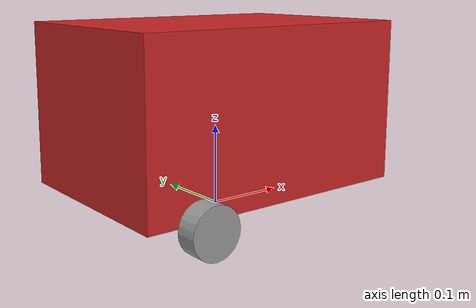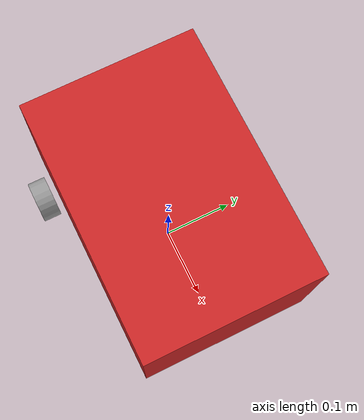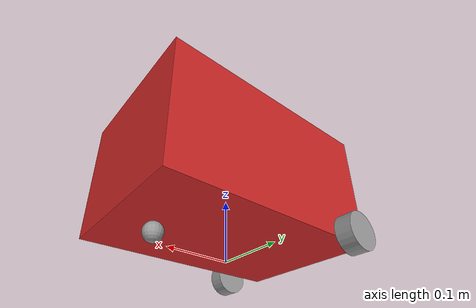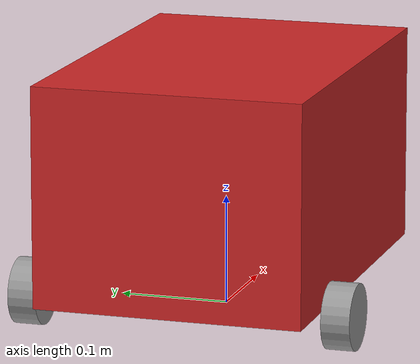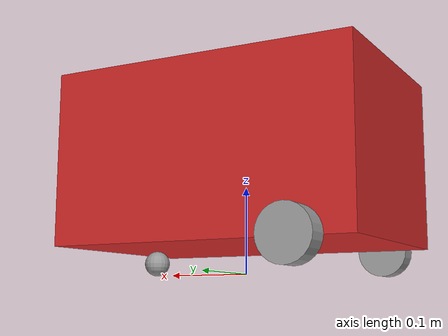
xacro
<?xml version="1.0"?>
<robot xmlns:xacro="http://www.ros.org/wiki/xacro">

    <xacro:property name="base_length" value="0.36" />
    <xacro:property name="base_width" value="0.245" />
    <xacro:property name="base_height" value="0.2" />
    <xacro:property name="wheel_radius" value="0.03" />
    <xacro:property name="wheel_length" value="0.026" />
    <xacro:property name="sphere_front_radius" value="${wheel_radius/2}" />

    <xacro:include filename="inertia.xacro" />

    <link name="base_footprint" />

    <link name="base_link">
        <visual>
            <geometry>
                <box size="${base_length} ${base_width} ${base_height}" />
            </geometry>
            <origin xyz="0 0 ${base_height/2}" rpy="0 0 0" />
            <material name="red" />
        </visual>
        <collision>
            <geometry>
                <box size="${base_length} ${base_width} ${base_height}" />
            </geometry>
            <origin xyz="0 0 ${base_height/2}" rpy="0 0 0" />
        </collision>
        <xacro:box_inertia m="5" x="${base_length}" y="${base_width}" z="${base_height}"
            o_xyz="0 0 ${base_height/2}" o_rpy="0 0 0" />
    </link>

    <link name="left_wheel_link">
        <visual>
            <geometry>
                <cylinder radius="${wheel_radius}" length="${wheel_length}" />
            </geometry>
            <origin xyz="0 0 0" rpy="${pi / 2.0} 0 0" />
            <material name="grey" />
        </visual>
        <collision>
            <geometry>
                <cylinder radius="${wheel_radius}" length="${wheel_length}" />
            </geometry>
            <origin xyz="0 0 0" rpy="${pi / 2.0} 0 0" />
        </collision>
        <xacro:cylinder_inertia m="0.010" radius="${wheel_radius}"
            length="${wheel_length}" o_xyz="0 0 0" o_rpy="${pi / 2.0} 0 0" />
    </link>

    <link name="right_wheel_link">
        <visual>
            <geometry>
                <cylinder radius="${wheel_radius}" length="${wheel_length}" />
            </geometry>
            <origin xyz="0 0 0" rpy="${pi / 2.0} 0 0" />
            <material name="grey" />
            <xacro:cylinder_inertia m="1" radius="${wheel_radius}"
                length="${wheel_length}" o_xyz="0 0 0" o_rpy="${pi / 2.0} 0 0" />
        </visual>
        <collision>
            <geometry>
                <cylinder radius="${wheel_radius}" length="${wheel_length}" />
            </geometry>
            <origin xyz="0 0 0" rpy="${pi / 2.0} 0 0" />
        </collision>
        <xacro:cylinder_inertia m="0.010" radius="${wheel_radius}"
            length="${wheel_length}" o_xyz="0 0 0" o_rpy="${pi / 2.0} 0 0" />
    </link>

    <link name="caster_wheel_link">
        <visual>
            <geometry>
                <sphere radius="${sphere_front_radius}" />
            </geometry>
            <material name="grey" />
            <origin xyz="0 0 0" rpy="0 0 0" />
        </visual>
        <collision>
            <geometry>
                <sphere radius="${sphere_front_radius}" />
            </geometry>
            <origin xyz="0 0 0" rpy="0 0 0" />
        </collision>
        <xacro:sphere_inertia m="0.010" r="${sphere_front_radius}" o_xyz="0 0 0" o_rpy="0 0 0" />
    </link>

    <joint name="base_footprint_base_joint" type="fixed">
        <parent link="base_footprint" />
        <child link="base_link" />
        <origin xyz="0 0 ${wheel_radius}" rpy="0 0 0" />
    </joint>

    <joint name="base_caster_wheel_joint" type="fixed">
        <parent link="base_link" />
        <child link="caster_wheel_link" />
        <origin xyz="${base_width/2} 0 -${sphere_front_radius}" rpy="0 0 0" />
    </joint>

    <joint name="base_left_wheel_joint" type="continuous">
        <parent link="base_link" />
        <child link="left_wheel_link" />
        <origin xyz="-${base_length/3} ${base_width/2 + wheel_length/2 + 0.009} 0" rpy="0 0 0" />
        <axis xyz="0 1 0" />
    </joint>

    <joint name="base_right_wheel_joint" type="continuous">
        <parent link="base_link" />
        <child link="right_wheel_link" />
        <origin xyz="-${base_length/3} -${base_width/2 + wheel_length/2  + 0.009} 0" rpy="0 0 0" />
        <axis xyz="0 1 0" />
    </joint>

    <gazebo reference="caster_wheel_link">
        <mu1 value="0.001"/>
        <mu2 value="0.001"/>
    </gazebo>

</robot>

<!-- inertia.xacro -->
<robot xmlns:xacro="http://www.ros.org/wiki/xacro">
    <xacro:macro name="cylinder_inertia" params="m radius length o_xyz o_rpy">
        <inertial>
            <mass value="${m}" />
            <origin xyz="${o_xyz}" rpy="${o_rpy}" />
            <inertia
                ixx="${(m / 12) * (3 * radius * radius + length * length)}"
                ixy="0" ixz="0"
                iyy="${(m / 12) * (3 * radius * radius + length * length)}"
                iyz="0"
                izz="${(m * radius * radius) / 2}" />
        </inertial>
    </xacro:macro>

    <xacro:macro name="sphere_inertia" params="m r o_xyz o_rpy">
        <inertial>
            <mass value="${m}" />
            <origin xyz="${o_xyz}" rpy="${o_rpy}" />
            <inertia ixx="${(2/5) * m * r * r}" ixy="0" ixz="0"
                iyy="${(2/5) * m * r * r}" iyz="0"
                izz="${(2/5) * m * r * r}" />
        </inertial>
    </xacro:macro>

    <xacro:macro name="box_inertia" params="m x y z o_xyz o_rpy">
        <inertial>
            <origin xyz="${o_xyz}" rpy="${o_rpy}" />
            <mass value="${m}" />
            <inertia
                ixx="${(m/12) * (y*y + z*z)}"
                ixy="0.0" ixz="0.0"
                iyy="${(m/12) * (x*x + z*z)}"
                iyz="0.0"
                izz="${(m/12) * (x*x + y*y)}" />
        </inertial>
    </xacro:macro>
</robot>
